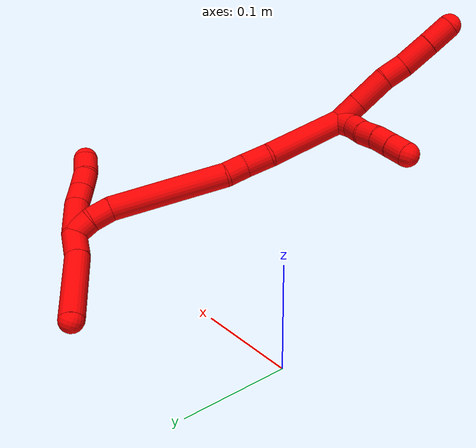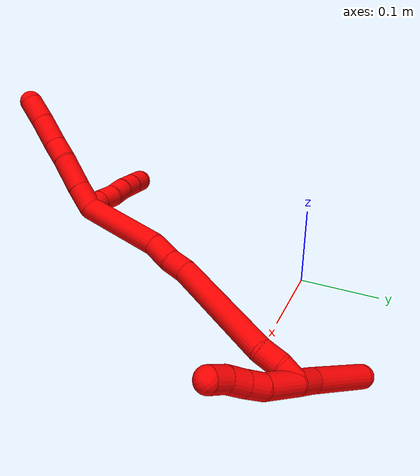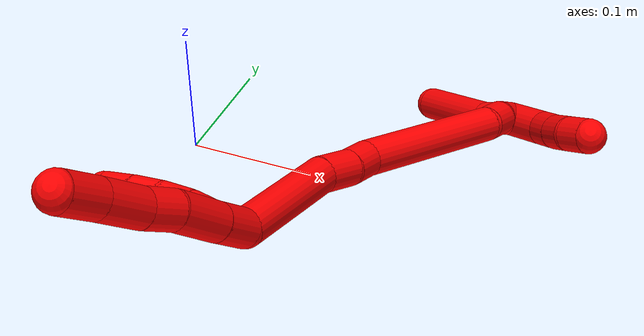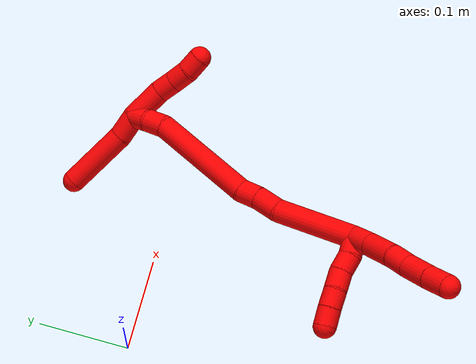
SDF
<sdf version="1.7">
 <world name="default">
  <model name="2">
   <static>0</static>
   <link name="2">
    <collision name="collision-cylinder-e_1_2_8">
     <pose>-0.001569 -0.006447 0.01197 0.494054 -0.114867 -0.028997</pose>
     <geometry><cylinder><radius>0.0125</radius><length>0.027372</length></cylinder></geometry>
     <surface>
      <friction><ode><mu>1.16</mu><mu2>1.16</mu2><slip1>0</slip1><slip2>0</slip2></ode></friction>
      <contact><ode><kp>1e+06</kp><kd>1</kd><max_vel>0</max_vel><min_depth>0.001</min_depth></ode></contact>
     </surface>
    </collision>
    <visual name="visual-cylinder-e_1_2_8">
     <pose>-0.001569 -0.006447 0.01197 0.494054 -0.114867 -0.028997</pose>
     <geometry><cylinder><radius>0.0125</radius><length>0.027372</length></cylinder></geometry>
     <material><ambient>1 0 0 1</ambient></material>
    </visual>
    <collision name="collision-cylinder-e_2_8_9">
     <pose>-0.006123 -0.02182 0.040136 0.503717 -0.160076 -0.041273</pose>
     <geometry><cylinder><radius>0.0125</radius><length>0.037463</length></cylinder></geometry>
     <surface>
      <friction><ode><mu>1.16</mu><mu2>1.16</mu2><slip1>0</slip1><slip2>0</slip2></ode></friction>
      <contact><ode><kp>1e+06</kp><kd>1</kd><max_vel>0</max_vel><min_depth>0.001</min_depth></ode></contact>
     </surface>
    </collision>
    <visual name="visual-cylinder-e_2_8_9">
     <pose>-0.006123 -0.02182 0.040136 0.503717 -0.160076 -0.041273</pose>
     <geometry><cylinder><radius>0.0125</radius><length>0.037463</length></cylinder></geometry>
     <material><ambient>1 0 0 1</ambient></material>
    </visual>
    <collision name="collision-cylinder-e_3_9_10">
     <pose>-0.010191 -0.03801 0.065617 0.663798 -0.09153 -0.031565</pose>
     <geometry><cylinder><radius>0.0125</radius><length>0.023679</length></cylinder></geometry>
     <surface>
      <friction><ode><mu>1.16</mu><mu2>1.16</mu2><slip1>0</slip1><slip2>0</slip2></ode></friction>
      <contact><ode><kp>1e+06</kp><kd>1</kd><max_vel>0</max_vel><min_depth>0.001</min_depth></ode></contact>
     </surface>
    </collision>
    <visual name="visual-cylinder-e_3_9_10">
     <pose>-0.010191 -0.03801 0.065617 0.663798 -0.09153 -0.031565</pose>
     <geometry><cylinder><radius>0.0125</radius><length>0.023679</length></cylinder></geometry>
     <material><ambient>1 0 0 1</ambient></material>
    </visual>
    <collision name="collision-cylinder-e_4_10_11">
     <pose>-0.013605 -0.053832 0.089002 0.545583 -0.140474 -0.039359</pose>
     <geometry><cylinder><radius>0.0125</radius><length>0.033313</length></cylinder></geometry>
     <surface>
      <friction><ode><mu>1.16</mu><mu2>1.16</mu2><slip1>0</slip1><slip2>0</slip2></ode></friction>
      <contact><ode><kp>1e+06</kp><kd>1</kd><max_vel>0</max_vel><min_depth>0.001</min_depth></ode></contact>
     </surface>
    </collision>
    <visual name="visual-cylinder-e_4_10_11">
     <pose>-0.013605 -0.053832 0.089002 0.545583 -0.140474 -0.039359</pose>
     <geometry><cylinder><radius>0.0125</radius><length>0.033313</length></cylinder></geometry>
     <material><ambient>1 0 0 1</ambient></material>
    </visual>
    <collision name="collision-cylinder-e_5_11_6">
     <pose>-0.01732 -0.069485 0.115191 0.530641 -0.098292 -0.026729</pose>
     <geometry><cylinder><radius>0.0125</radius><length>0.028172</length></cylinder></geometry>
     <surface>
      <friction><ode><mu>1.16</mu><mu2>1.16</mu2><slip1>0</slip1><slip2>0</slip2></ode></friction>
      <contact><ode><kp>1e+06</kp><kd>1</kd><max_vel>0</max_vel><min_depth>0.001</min_depth></ode></contact>
     </surface>
    </collision>
    <visual name="visual-cylinder-e_5_11_6">
     <pose>-0.01732 -0.069485 0.115191 0.530641 -0.098292 -0.026729</pose>
     <geometry><cylinder><radius>0.0125</radius><length>0.028172</length></cylinder></geometry>
     <material><ambient>1 0 0 1</ambient></material>
    </visual>
    <collision name="collision-cylinder-e_1_2_12">
     <pose>-0.006349 -0.007615 -0.001305 1.74052 -0.687919 -0.803411</pose>
     <geometry><cylinder><radius>0.0125</radius><length>0.02</length></cylinder></geometry>
     <surface>
      <friction><ode><mu>1.16</mu><mu2>1.16</mu2><slip1>0</slip1><slip2>0</slip2></ode></friction>
      <contact><ode><kp>1e+06</kp><kd>1</kd><max_vel>0</max_vel><min_depth>0.001</min_depth></ode></contact>
     </surface>
    </collision>
    <visual name="visual-cylinder-e_1_2_12">
     <pose>-0.006349 -0.007615 -0.001305 1.74052 -0.687919 -0.803411</pose>
     <geometry><cylinder><radius>0.0125</radius><length>0.02</length></cylinder></geometry>
     <material><ambient>1 0 0 1</ambient></material>
    </visual>
    <collision name="collision-cylinder-e_2_12_13">
     <pose>-0.020387 -0.02091 -0.005545 2.04772 -0.877048 -1.31262</pose>
     <geometry><cylinder><radius>0.0125</radius><length>0.02</length></cylinder></geometry>
     <surface>
      <friction><ode><mu>1.16</mu><mu2>1.16</mu2><slip1>0</slip1><slip2>0</slip2></ode></friction>
      <contact><ode><kp>1e+06</kp><kd>1</kd><max_vel>0</max_vel><min_depth>0.001</min_depth></ode></contact>
     </surface>
    </collision>
    <visual name="visual-cylinder-e_2_12_13">
     <pose>-0.020387 -0.02091 -0.005545 2.04772 -0.877048 -1.31262</pose>
     <geometry><cylinder><radius>0.0125</radius><length>0.02</length></cylinder></geometry>
     <material><ambient>1 0 0 1</ambient></material>
    </visual>
    <collision name="collision-cylinder-e_3_13_14">
     <pose>-0.034897 -0.033757 -0.009935 1.771 -0.75065 -0.898265</pose>
     <geometry><cylinder><radius>0.0125</radius><length>0.02</length></cylinder></geometry>
     <surface>
      <friction><ode><mu>1.16</mu><mu2>1.16</mu2><slip1>0</slip1><slip2>0</slip2></ode></friction>
      <contact><ode><kp>1e+06</kp><kd>1</kd><max_vel>0</max_vel><min_depth>0.001</min_depth></ode></contact>
     </surface>
    </collision>
    <visual name="visual-cylinder-e_3_13_14">
     <pose>-0.034897 -0.033757 -0.009935 1.771 -0.75065 -0.898265</pose>
     <geometry><cylinder><radius>0.0125</radius><length>0.02</length></cylinder></geometry>
     <material><ambient>1 0 0 1</ambient></material>
    </visual>
    <collision name="collision-cylinder-e_4_14_15">
     <pose>-0.047942 -0.048277 -0.014068 1.92022 -0.671863 -0.925458</pose>
     <geometry><cylinder><radius>0.0125</radius><length>0.02</length></cylinder></geometry>
     <surface>
      <friction><ode><mu>1.16</mu><mu2>1.16</mu2><slip1>0</slip1><slip2>0</slip2></ode></friction>
      <contact><ode><kp>1e+06</kp><kd>1</kd><max_vel>0</max_vel><min_depth>0.001</min_depth></ode></contact>
     </surface>
    </collision>
    <visual name="visual-cylinder-e_4_14_15">
     <pose>-0.047942 -0.048277 -0.014068 1.92022 -0.671863 -0.925458</pose>
     <geometry><cylinder><radius>0.0125</radius><length>0.02</length></cylinder></geometry>
     <material><ambient>1 0 0 1</ambient></material>
    </visual>
    <collision name="collision-cylinder-e_5_15_5">
     <pose>-0.059915 -0.063366 -0.019416 1.90298 -0.612428 -0.834877</pose>
     <geometry><cylinder><radius>0.0125</radius><length>0.02</length></cylinder></geometry>
     <surface>
      <friction><ode><mu>1.16</mu><mu2>1.16</mu2><slip1>0</slip1><slip2>0</slip2></ode></friction>
      <contact><ode><kp>1e+06</kp><kd>1</kd><max_vel>0</max_vel><min_depth>0.001</min_depth></ode></contact>
     </surface>
    </collision>
    <visual name="visual-cylinder-e_5_15_5">
     <pose>-0.059915 -0.063366 -0.019416 1.90298 -0.612428 -0.834877</pose>
     <geometry><cylinder><radius>0.0125</radius><length>0.02</length></cylinder></geometry>
     <material><ambient>1 0 0 1</ambient></material>
    </visual>
    <collision name="collision-cylinder-e_1_2_16">
     <pose>-0.015662 0.028468 -0.030348 -2.38815 -0.359982 0.862182</pose>
     <geometry><cylinder><radius>0.0125</radius><length>0.088921</length></cylinder></geometry>
     <surface>
      <friction><ode><mu>1.16</mu><mu2>1.16</mu2><slip1>0</slip1><slip2>0</slip2></ode></friction>
      <contact><ode><kp>1e+06</kp><kd>1</kd><max_vel>0</max_vel><min_depth>0.001</min_depth></ode></contact>
     </surface>
    </collision>
    <visual name="visual-cylinder-e_1_2_16">
     <pose>-0.015662 0.028468 -0.030348 -2.38815 -0.359982 0.862182</pose>
     <geometry><cylinder><radius>0.0125</radius><length>0.088921</length></cylinder></geometry>
     <material><ambient>1 0 0 1</ambient></material>
    </visual>
    <collision name="collision-cylinder-e_2_16_17">
     <pose>-0.032676 0.06686 -0.069788 -2.31244 -0.100181 0.226853</pose>
     <geometry><cylinder><radius>0.0125</radius><length>0.027052</length></cylinder></geometry>
     <surface>
      <friction><ode><mu>1.16</mu><mu2>1.16</mu2><slip1>0</slip1><slip2>0</slip2></ode></friction>
      <contact><ode><kp>1e+06</kp><kd>1</kd><max_vel>0</max_vel><min_depth>0.001</min_depth></ode></contact>
     </surface>
    </collision>
    <visual name="visual-cylinder-e_2_16_17">
     <pose>-0.032676 0.06686 -0.069788 -2.31244 -0.100181 0.226853</pose>
     <geometry><cylinder><radius>0.0125</radius><length>0.027052</length></cylinder></geometry>
     <material><ambient>1 0 0 1</ambient></material>
    </visual>
    <collision name="collision-cylinder-e_3_17_18">
     <pose>-0.036913 0.084031 -0.086343 -2.37087 -0.270446 0.647222</pose>
     <geometry><cylinder><radius>0.0125</radius><length>0.021594</length></cylinder></geometry>
     <surface>
      <friction><ode><mu>1.16</mu><mu2>1.16</mu2><slip1>0</slip1><slip2>0</slip2></ode></friction>
      <contact><ode><kp>1e+06</kp><kd>1</kd><max_vel>0</max_vel><min_depth>0.001</min_depth></ode></contact>
     </surface>
    </collision>
    <visual name="visual-cylinder-e_3_17_18">
     <pose>-0.036913 0.084031 -0.086343 -2.37087 -0.270446 0.647222</pose>
     <geometry><cylinder><radius>0.0125</radius><length>0.021594</length></cylinder></geometry>
     <material><ambient>1 0 0 1</ambient></material>
    </visual>
    <collision name="collision-cylinder-e_4_18_19">
     <pose>-0.04441 0.139675 -0.128111 -2.18742 -0.077593 0.149902</pose>
     <geometry><cylinder><radius>0.0125</radius><length>0.118998</length></cylinder></geometry>
     <surface>
      <friction><ode><mu>1.16</mu><mu2>1.16</mu2><slip1>0</slip1><slip2>0</slip2></ode></friction>
      <contact><ode><kp>1e+06</kp><kd>1</kd><max_vel>0</max_vel><min_depth>0.001</min_depth></ode></contact>
     </surface>
    </collision>
    <visual name="visual-cylinder-e_4_18_19">
     <pose>-0.04441 0.139675 -0.128111 -2.18742 -0.077593 0.149902</pose>
     <geometry><cylinder><radius>0.0125</radius><length>0.118998</length></cylinder></geometry>
     <material><ambient>1 0 0 1</ambient></material>
    </visual>
    <collision name="collision-cylinder-e_5_19_20">
     <pose>-0.051755 0.194853 -0.170549 -2.44658 -0.25251 0.674128</pose>
     <geometry><cylinder><radius>0.0125</radius><length>0.021877</length></cylinder></geometry>
     <surface>
      <friction><ode><mu>1.16</mu><mu2>1.16</mu2><slip1>0</slip1><slip2>0</slip2></ode></friction>
      <contact><ode><kp>1e+06</kp><kd>1</kd><max_vel>0</max_vel><min_depth>0.001</min_depth></ode></contact>
     </surface>
    </collision>
    <visual name="visual-cylinder-e_5_19_20">
     <pose>-0.051755 0.194853 -0.170549 -2.44658 -0.25251 0.674128</pose>
     <geometry><cylinder><radius>0.0125</radius><length>0.021877</length></cylinder></geometry>
     <material><ambient>1 0 0 1</ambient></material>
    </visual>
    <collision name="collision-cylinder-e_6_20_1">
     <pose>-0.055286 0.206972 -0.188016 -2.62214 -0.074143 0.27735</pose>
     <geometry><cylinder><radius>0.0125</radius><length>0.021559</length></cylinder></geometry>
     <surface>
      <friction><ode><mu>1.16</mu><mu2>1.16</mu2><slip1>0</slip1><slip2>0</slip2></ode></friction>
      <contact><ode><kp>1e+06</kp><kd>1</kd><max_vel>0</max_vel><min_depth>0.001</min_depth></ode></contact>
     </surface>
    </collision>
    <visual name="visual-cylinder-e_6_20_1">
     <pose>-0.055286 0.206972 -0.188016 -2.62214 -0.074143 0.27735</pose>
     <geometry><cylinder><radius>0.0125</radius><length>0.021559</length></cylinder></geometry>
     <material><ambient>1 0 0 1</ambient></material>
    </visual>
    <collision name="collision-cylinder-e_1_1_21">
     <pose>-0.043356 0.219054 -0.18367 -0.458165 0.695496 -0.168642</pose>
     <geometry><cylinder><radius>0.0125</radius><length>0.039728</length></cylinder></geometry>
     <surface>
      <friction><ode><mu>1.16</mu><mu2>1.16</mu2><slip1>0</slip1><slip2>0</slip2></ode></friction>
      <contact><ode><kp>1e+06</kp><kd>1</kd><max_vel>0</max_vel><min_depth>0.001</min_depth></ode></contact>
     </surface>
    </collision>
    <visual name="visual-cylinder-e_1_1_21">
     <pose>-0.043356 0.219054 -0.18367 -0.458165 0.695496 -0.168642</pose>
     <geometry><cylinder><radius>0.0125</radius><length>0.039728</length></cylinder></geometry>
     <material><ambient>1 0 0 1</ambient></material>
    </visual>
    <collision name="collision-cylinder-e_2_21_22">
     <pose>-0.025104 0.227531 -0.161709 -0.206107 0.578275 -0.06151</pose>
     <geometry><cylinder><radius>0.0125</radius><length>0.020211</length></cylinder></geometry>
     <surface>
      <friction><ode><mu>1.16</mu><mu2>1.16</mu2><slip1>0</slip1><slip2>0</slip2></ode></friction>
      <contact><ode><kp>1e+06</kp><kd>1</kd><max_vel>0</max_vel><min_depth>0.001</min_depth></ode></contact>
     </surface>
    </collision>
    <visual name="visual-cylinder-e_2_21_22">
     <pose>-0.025104 0.227531 -0.161709 -0.206107 0.578275 -0.06151</pose>
     <geometry><cylinder><radius>0.0125</radius><length>0.020211</length></cylinder></geometry>
     <material><ambient>1 0 0 1</ambient></material>
    </visual>
    <collision name="collision-cylinder-e_3_22_23">
     <pose>-0.014661 0.231172 -0.144924 -0.220949 0.514053 -0.058295</pose>
     <geometry><cylinder><radius>0.0125</radius><length>0.020013</length></cylinder></geometry>
     <surface>
      <friction><ode><mu>1.16</mu><mu2>1.16</mu2><slip1>0</slip1><slip2>0</slip2></ode></friction>
      <contact><ode><kp>1e+06</kp><kd>1</kd><max_vel>0</max_vel><min_depth>0.001</min_depth></ode></contact>
     </surface>
    </collision>
    <visual name="visual-cylinder-e_3_22_23">
     <pose>-0.014661 0.231172 -0.144924 -0.220949 0.514053 -0.058295</pose>
     <geometry><cylinder><radius>0.0125</radius><length>0.020013</length></cylinder></geometry>
     <material><ambient>1 0 0 1</ambient></material>
    </visual>
    <collision name="collision-cylinder-e_4_23_4">
     <pose>-0.004133 0.237099 -0.12915 -0.50468 0.593687 -0.157408</pose>
     <geometry><cylinder><radius>0.0125</radius><length>0.020048</length></cylinder></geometry>
     <surface>
      <friction><ode><mu>1.16</mu><mu2>1.16</mu2><slip1>0</slip1><slip2>0</slip2></ode></friction>
      <contact><ode><kp>1e+06</kp><kd>1</kd><max_vel>0</max_vel><min_depth>0.001</min_depth></ode></contact>
     </surface>
    </collision>
    <visual name="visual-cylinder-e_4_23_4">
     <pose>-0.004133 0.237099 -0.12915 -0.50468 0.593687 -0.157408</pose>
     <geometry><cylinder><radius>0.0125</radius><length>0.020048</length></cylinder></geometry>
     <material><ambient>1 0 0 1</ambient></material>
    </visual>
    <collision name="collision-cylinder-e_1_1_24">
     <pose>-0.063085 0.205473 -0.206743 2.51262 -0.542254 -1.41428</pose>
     <geometry><cylinder><radius>0.0125</radius><length>0.027129</length></cylinder></geometry>
     <surface>
      <friction><ode><mu>1.16</mu><mu2>1.16</mu2><slip1>0</slip1><slip2>0</slip2></ode></friction>
      <contact><ode><kp>1e+06</kp><kd>1</kd><max_vel>0</max_vel><min_depth>0.001</min_depth></ode></contact>
     </surface>
    </collision>
    <visual name="visual-cylinder-e_1_1_24">
     <pose>-0.063085 0.205473 -0.206743 2.51262 -0.542254 -1.41428</pose>
     <geometry><cylinder><radius>0.0125</radius><length>0.027129</length></cylinder></geometry>
     <material><ambient>1 0 0 1</ambient></material>
    </visual>
    <collision name="collision-cylinder-e_2_24_3">
     <pose>-0.092886 0.186545 -0.241856 2.70209 -0.67614 -2.00962</pose>
     <geometry><cylinder><radius>0.0125</radius><length>0.072871</length></cylinder></geometry>
     <surface>
      <friction><ode><mu>1.16</mu><mu2>1.16</mu2><slip1>0</slip1><slip2>0</slip2></ode></friction>
      <contact><ode><kp>1e+06</kp><kd>1</kd><max_vel>0</max_vel><min_depth>0.001</min_depth></ode></contact>
     </surface>
    </collision>
    <visual name="visual-cylinder-e_2_24_3">
     <pose>-0.092886 0.186545 -0.241856 2.70209 -0.67614 -2.00962</pose>
     <geometry><cylinder><radius>0.0125</radius><length>0.072871</length></cylinder></geometry>
     <material><ambient>1 0 0 1</ambient></material>
    </visual>
    <collision name="collision-sphere-3">
     <pose>-0.115686 0.174453 -0.267575 0 -0 0</pose>
     <geometry><sphere><radius>0.0125</radius></sphere></geometry>
     <surface>
      <friction><ode><mu>1.16</mu><mu2>1.16</mu2><slip1>0</slip1><slip2>0</slip2></ode></friction>
      <contact><ode><kp>1e+06</kp><kd>1</kd><max_vel>0</max_vel><min_depth>0.001</min_depth></ode></contact>
     </surface>
    </collision>
    <visual name="visual-sphere-3">
     <pose>-0.115686 0.174453 -0.267575 0 -0 0</pose>
     <geometry><sphere><radius>0.0125</radius></sphere></geometry>
     <material><ambient>1 0 0 1</ambient></material>
    </visual>
    <collision name="collision-sphere-24">
     <pose>-0.070085 0.198638 -0.216138 0 -0 0</pose>
     <geometry><sphere><radius>0.0125</radius></sphere></geometry>
     <surface>
      <friction><ode><mu>1.16</mu><mu2>1.16</mu2><slip1>0</slip1><slip2>0</slip2></ode></friction>
      <contact><ode><kp>1e+06</kp><kd>1</kd><max_vel>0</max_vel><min_depth>0.001</min_depth></ode></contact>
     </surface>
    </collision>
    <visual name="visual-sphere-24">
     <pose>-0.070085 0.198638 -0.216138 0 -0 0</pose>
     <geometry><sphere><radius>0.0125</radius></sphere></geometry>
     <material><ambient>1 0 0 1</ambient></material>
    </visual>
    <collision name="collision-sphere-4">
     <pose>0.001475 0.241117 -0.121877 0 -0 0</pose>
     <geometry><sphere><radius>0.0125</radius></sphere></geometry>
     <surface>
      <friction><ode><mu>1.16</mu><mu2>1.16</mu2><slip1>0</slip1><slip2>0</slip2></ode></friction>
      <contact><ode><kp>1e+06</kp><kd>1</kd><max_vel>0</max_vel><min_depth>0.001</min_depth></ode></contact>
     </surface>
    </collision>
    <visual name="visual-sphere-4">
     <pose>0.001475 0.241117 -0.121877 0 -0 0</pose>
     <geometry><sphere><radius>0.0125</radius></sphere></geometry>
     <material><ambient>1 0 0 1</ambient></material>
    </visual>
    <collision name="collision-sphere-23">
     <pose>-0.00974 0.233082 -0.136423 0 -0 0</pose>
     <geometry><sphere><radius>0.0125</radius></sphere></geometry>
     <surface>
      <friction><ode><mu>1.16</mu><mu2>1.16</mu2><slip1>0</slip1><slip2>0</slip2></ode></friction>
      <contact><ode><kp>1e+06</kp><kd>1</kd><max_vel>0</max_vel><min_depth>0.001</min_depth></ode></contact>
     </surface>
    </collision>
    <visual name="visual-sphere-23">
     <pose>-0.00974 0.233082 -0.136423 0 -0 0</pose>
     <geometry><sphere><radius>0.0125</radius></sphere></geometry>
     <material><ambient>1 0 0 1</ambient></material>
    </visual>
    <collision name="collision-sphere-22">
     <pose>-0.019581 0.229263 -0.153426 0 -0 0</pose>
     <geometry><sphere><radius>0.0125</radius></sphere></geometry>
     <surface>
      <friction><ode><mu>1.16</mu><mu2>1.16</mu2><slip1>0</slip1><slip2>0</slip2></ode></friction>
      <contact><ode><kp>1e+06</kp><kd>1</kd><max_vel>0</max_vel><min_depth>0.001</min_depth></ode></contact>
     </surface>
    </collision>
    <visual name="visual-sphere-22">
     <pose>-0.019581 0.229263 -0.153426 0 -0 0</pose>
     <geometry><sphere><radius>0.0125</radius></sphere></geometry>
     <material><ambient>1 0 0 1</ambient></material>
    </visual>
    <collision name="collision-sphere-21">
     <pose>-0.030628 0.225799 -0.169992 0 -0 0</pose>
     <geometry><sphere><radius>0.0125</radius></sphere></geometry>
     <surface>
      <friction><ode><mu>1.16</mu><mu2>1.16</mu2><slip1>0</slip1><slip2>0</slip2></ode></friction>
      <contact><ode><kp>1e+06</kp><kd>1</kd><max_vel>0</max_vel><min_depth>0.001</min_depth></ode></contact>
     </surface>
    </collision>
    <visual name="visual-sphere-21">
     <pose>-0.030628 0.225799 -0.169992 0 -0 0</pose>
     <geometry><sphere><radius>0.0125</radius></sphere></geometry>
     <material><ambient>1 0 0 1</ambient></material>
    </visual>
    <collision name="collision-sphere-1">
     <pose>-0.056084 0.212308 -0.197347 0 -0 0</pose>
     <geometry><sphere><radius>0.0125</radius></sphere></geometry>
     <surface>
      <friction><ode><mu>1.16</mu><mu2>1.16</mu2><slip1>0</slip1><slip2>0</slip2></ode></friction>
      <contact><ode><kp>1e+06</kp><kd>1</kd><max_vel>0</max_vel><min_depth>0.001</min_depth></ode></contact>
     </surface>
    </collision>
    <visual name="visual-sphere-1">
     <pose>-0.056084 0.212308 -0.197347 0 -0 0</pose>
     <geometry><sphere><radius>0.0125</radius></sphere></geometry>
     <material><ambient>1 0 0 1</ambient></material>
    </visual>
    <collision name="collision-sphere-6">
     <pose>-0.018702 -0.076579 0.127281 0 -0 0</pose>
     <geometry><sphere><radius>0.0125</radius></sphere></geometry>
     <surface>
      <friction><ode><mu>1.16</mu><mu2>1.16</mu2><slip1>0</slip1><slip2>0</slip2></ode></friction>
      <contact><ode><kp>1e+06</kp><kd>1</kd><max_vel>0</max_vel><min_depth>0.001</min_depth></ode></contact>
     </surface>
    </collision>
    <visual name="visual-sphere-6">
     <pose>-0.018702 -0.076579 0.127281 0 -0 0</pose>
     <geometry><sphere><radius>0.0125</radius></sphere></geometry>
     <material><ambient>1 0 0 1</ambient></material>
    </visual>
    <collision name="collision-sphere-11">
     <pose>-0.015937 -0.062391 0.1031 0 -0 0</pose>
     <geometry><sphere><radius>0.0125</radius></sphere></geometry>
     <surface>
      <friction><ode><mu>1.16</mu><mu2>1.16</mu2><slip1>0</slip1><slip2>0</slip2></ode></friction>
      <contact><ode><kp>1e+06</kp><kd>1</kd><max_vel>0</max_vel><min_depth>0.001</min_depth></ode></contact>
     </surface>
    </collision>
    <visual name="visual-sphere-11">
     <pose>-0.015937 -0.062391 0.1031 0 -0 0</pose>
     <geometry><sphere><radius>0.0125</radius></sphere></geometry>
     <material><ambient>1 0 0 1</ambient></material>
    </visual>
    <collision name="collision-sphere-10">
     <pose>-0.011273 -0.045274 0.074904 0 -0 0</pose>
     <geometry><sphere><radius>0.0125</radius></sphere></geometry>
     <surface>
      <friction><ode><mu>1.16</mu><mu2>1.16</mu2><slip1>0</slip1><slip2>0</slip2></ode></friction>
      <contact><ode><kp>1e+06</kp><kd>1</kd><max_vel>0</max_vel><min_depth>0.001</min_depth></ode></contact>
     </surface>
    </collision>
    <visual name="visual-sphere-10">
     <pose>-0.011273 -0.045274 0.074904 0 -0 0</pose>
     <geometry><sphere><radius>0.0125</radius></sphere></geometry>
     <material><ambient>1 0 0 1</ambient></material>
    </visual>
    <collision name="collision-sphere-9">
     <pose>-0.009109 -0.030746 0.056331 0 -0 0</pose>
     <geometry><sphere><radius>0.0125</radius></sphere></geometry>
     <surface>
      <friction><ode><mu>1.16</mu><mu2>1.16</mu2><slip1>0</slip1><slip2>0</slip2></ode></friction>
      <contact><ode><kp>1e+06</kp><kd>1</kd><max_vel>0</max_vel><min_depth>0.001</min_depth></ode></contact>
     </surface>
    </collision>
    <visual name="visual-sphere-9">
     <pose>-0.009109 -0.030746 0.056331 0 -0 0</pose>
     <geometry><sphere><radius>0.0125</radius></sphere></geometry>
     <material><ambient>1 0 0 1</ambient></material>
    </visual>
    <collision name="collision-sphere-2">
     <geometry><sphere><radius>0.0125</radius></sphere></geometry>
     <surface>
      <friction><ode><mu>1.16</mu><mu2>1.16</mu2><slip1>0</slip1><slip2>0</slip2></ode></friction>
      <contact><ode><kp>1e+06</kp><kd>1</kd><max_vel>0</max_vel><min_depth>0.001</min_depth></ode></contact>
     </surface>
    </collision>
    <visual name="visual-sphere-2">
     <geometry><sphere><radius>0.0125</radius></sphere></geometry>
     <material><ambient>1 0 0 1</ambient></material>
    </visual>
    <collision name="collision-sphere-19">
     <pose>-0.049022 0.18807 -0.162414 0 -0 0</pose>
     <geometry><sphere><radius>0.0125</radius></sphere></geometry>
     <surface>
      <friction><ode><mu>1.16</mu><mu2>1.16</mu2><slip1>0</slip1><slip2>0</slip2></ode></friction>
      <contact><ode><kp>1e+06</kp><kd>1</kd><max_vel>0</max_vel><min_depth>0.001</min_depth></ode></contact>
     </surface>
    </collision>
    <visual name="visual-sphere-19">
     <pose>-0.049022 0.18807 -0.162414 0 -0 0</pose>
     <geometry><sphere><radius>0.0125</radius></sphere></geometry>
     <material><ambient>1 0 0 1</ambient></material>
    </visual>
    <collision name="collision-sphere-8">
     <pose>-0.003137 -0.012894 0.02394 0 -0 0</pose>
     <geometry><sphere><radius>0.0125</radius></sphere></geometry>
     <surface>
      <friction><ode><mu>1.16</mu><mu2>1.16</mu2><slip1>0</slip1><slip2>0</slip2></ode></friction>
      <contact><ode><kp>1e+06</kp><kd>1</kd><max_vel>0</max_vel><min_depth>0.001</min_depth></ode></contact>
     </surface>
    </collision>
    <visual name="visual-sphere-8">
     <pose>-0.003137 -0.012894 0.02394 0 -0 0</pose>
     <geometry><sphere><radius>0.0125</radius></sphere></geometry>
     <material><ambient>1 0 0 1</ambient></material>
    </visual>
    <collision name="collision-sphere-12">
     <pose>-0.012699 -0.015229 -0.00261 0 -0 0</pose>
     <geometry><sphere><radius>0.0125</radius></sphere></geometry>
     <surface>
      <friction><ode><mu>1.16</mu><mu2>1.16</mu2><slip1>0</slip1><slip2>0</slip2></ode></friction>
      <contact><ode><kp>1e+06</kp><kd>1</kd><max_vel>0</max_vel><min_depth>0.001</min_depth></ode></contact>
     </surface>
    </collision>
    <visual name="visual-sphere-12">
     <pose>-0.012699 -0.015229 -0.00261 0 -0 0</pose>
     <geometry><sphere><radius>0.0125</radius></sphere></geometry>
     <material><ambient>1 0 0 1</ambient></material>
    </visual>
    <collision name="collision-sphere-13">
     <pose>-0.028076 -0.026591 -0.00848 0 -0 0</pose>
     <geometry><sphere><radius>0.0125</radius></sphere></geometry>
     <surface>
      <friction><ode><mu>1.16</mu><mu2>1.16</mu2><slip1>0</slip1><slip2>0</slip2></ode></friction>
      <contact><ode><kp>1e+06</kp><kd>1</kd><max_vel>0</max_vel><min_depth>0.001</min_depth></ode></contact>
     </surface>
    </collision>
    <visual name="visual-sphere-13">
     <pose>-0.028076 -0.026591 -0.00848 0 -0 0</pose>
     <geometry><sphere><radius>0.0125</radius></sphere></geometry>
     <material><ambient>1 0 0 1</ambient></material>
    </visual>
    <collision name="collision-sphere-14">
     <pose>-0.041718 -0.040924 -0.011389 0 -0 0</pose>
     <geometry><sphere><radius>0.0125</radius></sphere></geometry>
     <surface>
      <friction><ode><mu>1.16</mu><mu2>1.16</mu2><slip1>0</slip1><slip2>0</slip2></ode></friction>
      <contact><ode><kp>1e+06</kp><kd>1</kd><max_vel>0</max_vel><min_depth>0.001</min_depth></ode></contact>
     </surface>
    </collision>
    <visual name="visual-sphere-14">
     <pose>-0.041718 -0.040924 -0.011389 0 -0 0</pose>
     <geometry><sphere><radius>0.0125</radius></sphere></geometry>
     <material><ambient>1 0 0 1</ambient></material>
    </visual>
    <collision name="collision-sphere-15">
     <pose>-0.054167 -0.055631 -0.016748 0 -0 0</pose>
     <geometry><sphere><radius>0.0125</radius></sphere></geometry>
     <surface>
      <friction><ode><mu>1.16</mu><mu2>1.16</mu2><slip1>0</slip1><slip2>0</slip2></ode></friction>
      <contact><ode><kp>1e+06</kp><kd>1</kd><max_vel>0</max_vel><min_depth>0.001</min_depth></ode></contact>
     </surface>
    </collision>
    <visual name="visual-sphere-15">
     <pose>-0.054167 -0.055631 -0.016748 0 -0 0</pose>
     <geometry><sphere><radius>0.0125</radius></sphere></geometry>
     <material><ambient>1 0 0 1</ambient></material>
    </visual>
    <collision name="collision-sphere-5">
     <pose>-0.065664 -0.071101 -0.022085 0 -0 0</pose>
     <geometry><sphere><radius>0.0125</radius></sphere></geometry>
     <surface>
      <friction><ode><mu>1.16</mu><mu2>1.16</mu2><slip1>0</slip1><slip2>0</slip2></ode></friction>
      <contact><ode><kp>1e+06</kp><kd>1</kd><max_vel>0</max_vel><min_depth>0.001</min_depth></ode></contact>
     </surface>
    </collision>
    <visual name="visual-sphere-5">
     <pose>-0.065664 -0.071101 -0.022085 0 -0 0</pose>
     <geometry><sphere><radius>0.0125</radius></sphere></geometry>
     <material><ambient>1 0 0 1</ambient></material>
    </visual>
    <collision name="collision-sphere-16">
     <pose>-0.031323 0.056936 -0.060697 0 -0 0</pose>
     <geometry><sphere><radius>0.0125</radius></sphere></geometry>
     <surface>
      <friction><ode><mu>1.16</mu><mu2>1.16</mu2><slip1>0</slip1><slip2>0</slip2></ode></friction>
      <contact><ode><kp>1e+06</kp><kd>1</kd><max_vel>0</max_vel><min_depth>0.001</min_depth></ode></contact>
     </surface>
    </collision>
    <visual name="visual-sphere-16">
     <pose>-0.031323 0.056936 -0.060697 0 -0 0</pose>
     <geometry><sphere><radius>0.0125</radius></sphere></geometry>
     <material><ambient>1 0 0 1</ambient></material>
    </visual>
    <collision name="collision-sphere-17">
     <pose>-0.034029 0.076783 -0.078878 0 -0 0</pose>
     <geometry><sphere><radius>0.0125</radius></sphere></geometry>
     <surface>
      <friction><ode><mu>1.16</mu><mu2>1.16</mu2><slip1>0</slip1><slip2>0</slip2></ode></friction>
      <contact><ode><kp>1e+06</kp><kd>1</kd><max_vel>0</max_vel><min_depth>0.001</min_depth></ode></contact>
     </surface>
    </collision>
    <visual name="visual-sphere-17">
     <pose>-0.034029 0.076783 -0.078878 0 -0 0</pose>
     <geometry><sphere><radius>0.0125</radius></sphere></geometry>
     <material><ambient>1 0 0 1</ambient></material>
    </visual>
    <collision name="collision-sphere-18">
     <pose>-0.039798 0.09128 -0.093807 0 -0 0</pose>
     <geometry><sphere><radius>0.0125</radius></sphere></geometry>
     <surface>
      <friction><ode><mu>1.16</mu><mu2>1.16</mu2><slip1>0</slip1><slip2>0</slip2></ode></friction>
      <contact><ode><kp>1e+06</kp><kd>1</kd><max_vel>0</max_vel><min_depth>0.001</min_depth></ode></contact>
     </surface>
    </collision>
    <visual name="visual-sphere-18">
     <pose>-0.039798 0.09128 -0.093807 0 -0 0</pose>
     <geometry><sphere><radius>0.0125</radius></sphere></geometry>
     <material><ambient>1 0 0 1</ambient></material>
    </visual>
    <collision name="collision-sphere-20">
     <pose>-0.054487 0.201636 -0.178684 0 -0 0</pose>
     <geometry><sphere><radius>0.0125</radius></sphere></geometry>
     <surface>
      <friction><ode><mu>1.16</mu><mu2>1.16</mu2><slip1>0</slip1><slip2>0</slip2></ode></friction>
      <contact><ode><kp>1e+06</kp><kd>1</kd><max_vel>0</max_vel><min_depth>0.001</min_depth></ode></contact>
     </surface>
    </collision>
    <visual name="visual-sphere-20">
     <pose>-0.054487 0.201636 -0.178684 0 -0 0</pose>
     <geometry><sphere><radius>0.0125</radius></sphere></geometry>
     <material><ambient>1 0 0 1</ambient></material>
    </visual>
    <inertial>
     <pose>-0.035484 0.085635 -0.080238 0 -0 0</pose>
     <mass>0.75</mass>
     <inertia>
      <ixx>0.000231</ixx>
      <ixy>0</ixy>
      <ixz>0</ixz>
      <iyy>-1.4e-05</iyy>
      <iyz>0</iyz>
      <izz>-8.8e-05</izz>
     </inertia>
    </inertial>
   </link>
   <pose>0.151397 -0.207954 0.131804 0.308723 0.507186 -0.714404</pose>
  </model>
 </world>
</sdf>
